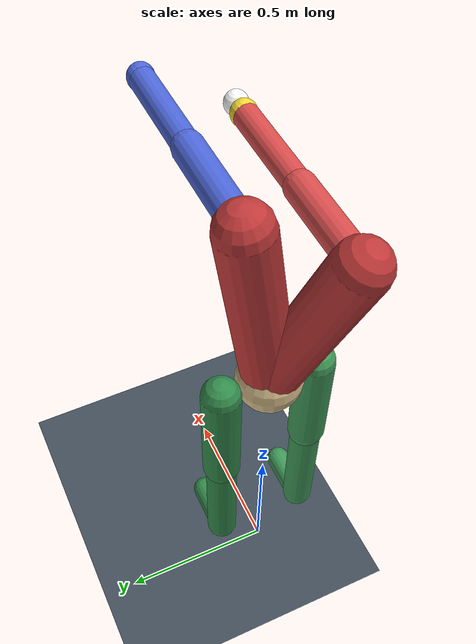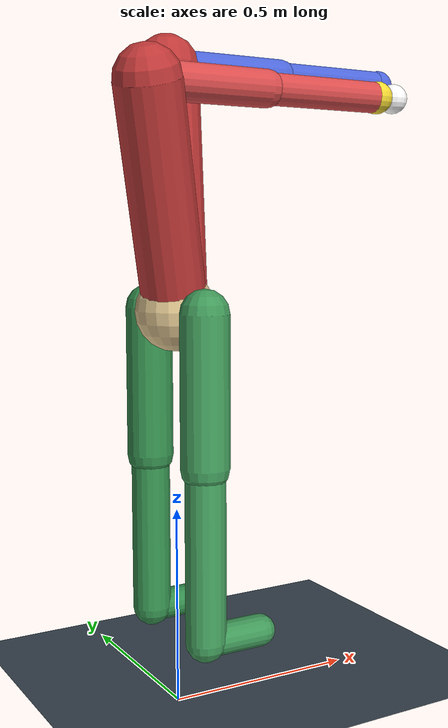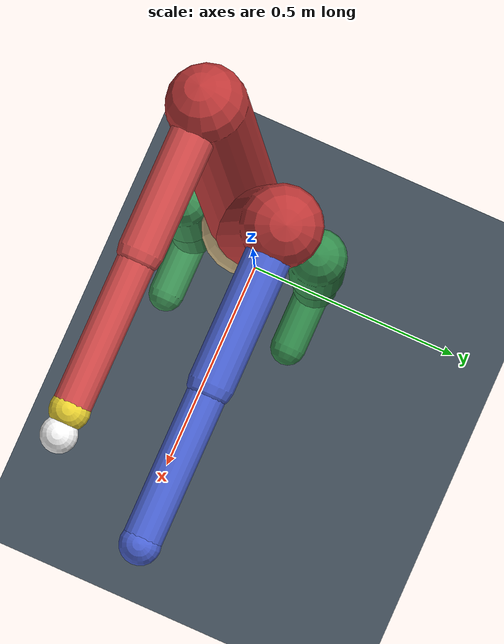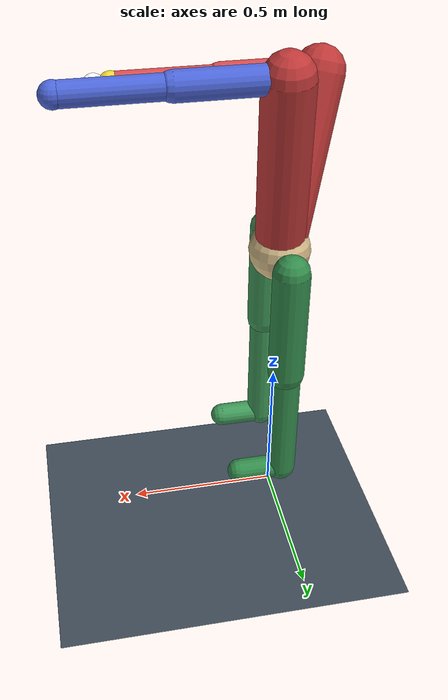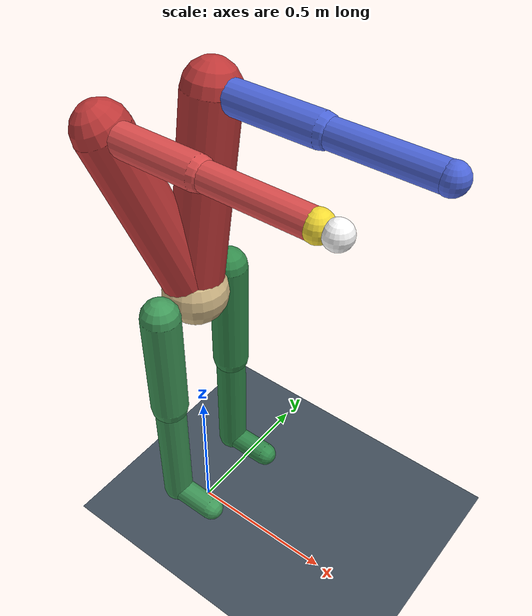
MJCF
<mujoco model="PitcherFullBody">
  <compiler angle="radian"/>
  <option timestep="0.001" gravity="0 0 -9.81" integrator="Euler"/>

  <default>
    <joint type="hinge" damping="5.0" limited="true"/>
    <position kp="80" kv="8"/>
    <geom type="capsule" density="500"/>
    <site size="0.018" rgba="0 0.8 0.8 1"/>
  </default>

  <worldbody>
    <light pos="1 0 3" dir="0 0 -1" directional="true"/>
    <geom name="floor" type="plane" size="5 5 0.1" rgba="0.25 0.3 0.35 1" condim="3"/>

    <!-- Mocap target for pelvis (kinematic root, invisible) -->
    <body name="pelvis_target" mocap="true" pos="0 0 1">
      <geom type="sphere" size="0.001" contype="0" conaffinity="0" rgba="0 0 0 0"/>
    </body>

    <body name="pelvis" pos="0 0 1">
      <freejoint name="root"/>
      <site name="pelvis_site" pos="0 0 0"/>
      <geom name="pelvis_geom" type="sphere" size="0.10" rgba="0.85 0.75 0.55 1"/>

      <!-- ═══════════ TORSO + ARMS ═══════════ -->
      <body name="torso" pos="0 0 0">
        <joint name="trunk_yaw"   axis="0 0 1" range="-3.14 3.14"/>
        <joint name="trunk_pitch" axis="0 1 0" range="-2.5 2.5"/>
        <joint name="trunk_roll"  axis="1 0 0" range="-2.5 2.5"/>
        <geom name="torso_geom" fromto="0 0 0  -0.136730 -0.144815 0.521872" size="0.08" rgba="0.75 0.22 0.22 1"/>
        <geom name="torso_geom2" fromto="0 0 0  0.020841 0.079968 0.589530" size="0.08" rgba="0.75 0.22 0.22 1"/>

        <!-- Throwing arm -->
        <body name="throw_upper_arm" pos="-0.136730 -0.144815 0.521872">
          <site name="throw_shoulder_site" pos="0 0 0"/>
          <joint name="throw_shoulder_yaw"   axis="0 0 1" range="-3.14 3.14"/>
          <joint name="throw_shoulder_pitch" axis="0 1 0" range="-3.14 3.14"/>
          <joint name="throw_shoulder_roll"  axis="1 0 0" range="-3.14 3.14"/>
          <geom name="throw_upper_geom" fromto="0 0 0  0.304182 0 0" size="0.045" rgba="0.85 0.30 0.30 1"/>

          <body name="throw_forearm" pos="0.304182 0 0">
            <site name="throw_elbow_site" pos="0 0 0"/>
            <joint name="throw_elbow_flex" axis="0 1 0" range="-3.14 0.2"/>
            <geom name="throw_fore_geom" fromto="0 0 0  0.323989 0 0" size="0.038" rgba="0.85 0.30 0.30 1"/>

            <body name="throw_hand" pos="0.323989 0 0">
              <site name="throw_hand_site" pos="0 0 0"/>
              <geom name="throw_hand_geom" type="sphere" size="0.04" rgba="0.95 0.85 0.2 1"/>
              <!-- Baseball (visual, attached to hand) -->
              <geom name="ball_geom" type="sphere" size="0.0365" pos="0.05 0 0"
                    rgba="1.0 1.0 1.0 1" mass="0.145" contype="0" conaffinity="0"/>
              <site name="ball_site" pos="0.05 0 0"/>
            </body>
          </body>
        </body>

        <!-- Glove arm -->
        <body name="glove_upper_arm" pos="0.020841 0.079968 0.589530">
          <site name="glove_shoulder_site" pos="0 0 0"/>
          <joint name="glove_shoulder_yaw"   axis="0 0 1" range="-3.14 3.14"/>
          <joint name="glove_shoulder_pitch" axis="0 1 0" range="-3.14 3.14"/>
          <joint name="glove_shoulder_roll"  axis="1 0 0" range="-3.14 3.14"/>
          <geom name="glove_upper_geom" fromto="0 0 0  0.323337 0 0" size="0.045" rgba="0.30 0.40 0.85 1"/>

          <body name="glove_forearm" pos="0.323337 0 0">
            <site name="glove_elbow_site" pos="0 0 0"/>
            <joint name="glove_elbow_flex" axis="0 1 0" range="-3.14 0.2"/>
            <geom name="glove_fore_geom" fromto="0 0 0  0.321395 0 0" size="0.038" rgba="0.30 0.40 0.85 1"/>

            <body name="glove_hand" pos="0.321395 0 0">
              <site name="glove_hand_site" pos="0 0 0"/>
              <geom name="glove_hand_geom" type="sphere" size="0.04" rgba="0.30 0.40 0.85 1"/>
            </body>
          </body>
        </body>
      </body>

      <!-- ═══════════ REAR LEG ═══════════ -->
      <body name="rear_thigh" pos="0.000000 -0.150267 -0.000000">
        <site name="rear_hip_site" pos="0 0 0"/>
        <joint name="rear_hip_yaw"   axis="0 0 1" range="-3.14 3.14"/>
        <joint name="rear_hip_pitch" axis="0 1 0" range="-3.14 3.14"/>
        <joint name="rear_hip_roll"  axis="1 0 0" range="-3.14 3.14"/>
        <geom name="rear_thigh_geom" fromto="0 0 0  0 0 -0.363788" size="0.06" rgba="0.25 0.6 0.35 1"/>

        <body name="rear_shin" pos="0 0 -0.363788">
          <site name="rear_knee_site" pos="0 0 0"/>
          <joint name="rear_knee_flex" axis="0 1 0" range="-0.1 3.14"/>
          <geom name="rear_shin_geom" fromto="0 0 0  0 0 -0.427443" size="0.05" rgba="0.25 0.6 0.35 1"/>

          <body name="rear_foot" pos="0 0 -0.427443">
            <site name="rear_ankle_site" pos="0 0 0"/>
            <joint name="rear_ankle_flex" axis="0 1 0" range="-1.5 1.5"/>
            <geom name="rear_foot_geom" fromto="0 0 0  0.15 0 0" size="0.04" rgba="0.25 0.6 0.35 1"/>
          </body>
        </body>
      </body>

      <!-- ═══════════ LEAD LEG ═══════════ -->
      <body name="lead_thigh" pos="-0.000000 0.150267 -0.000000">
        <site name="lead_hip_site" pos="0 0 0"/>
        <joint name="lead_hip_yaw"   axis="0 0 1" range="-3.14 3.14"/>
        <joint name="lead_hip_pitch" axis="0 1 0" range="-3.14 3.14"/>
        <joint name="lead_hip_roll"  axis="1 0 0" range="-3.14 3.14"/>
        <geom name="lead_thigh_geom" fromto="0 0 0  0 0 -0.383317" size="0.06" rgba="0.20 0.55 0.30 1"/>

        <body name="lead_shin" pos="0 0 -0.383317">
          <site name="lead_knee_site" pos="0 0 0"/>
          <joint name="lead_knee_flex" axis="0 1 0" range="-0.1 3.14"/>
          <geom name="lead_shin_geom" fromto="0 0 0  0 0 -0.412274" size="0.05" rgba="0.20 0.55 0.30 1"/>

          <body name="lead_foot" pos="0 0 -0.412274">
            <site name="lead_ankle_site" pos="0 0 0"/>
            <joint name="lead_ankle_flex" axis="0 1 0" range="-1.5 1.5"/>
            <geom name="lead_foot_geom" fromto="0 0 0  0.15 0 0" size="0.04" rgba="0.20 0.55 0.30 1"/>
          </body>
        </body>
      </body>
    </body>
  </worldbody>

  <actuator>
    <!-- trunk (heavy body, high gains) -->
    <position name="trunk_yaw"   joint="trunk_yaw"   kp="500" kv="50"/>
    <position name="trunk_pitch" joint="trunk_pitch" kp="500" kv="50"/>
    <position name="trunk_roll"  joint="trunk_roll"  kp="500" kv="50"/>
    <!-- throw arm (fast movements, needs stiff tracking) -->
    <position name="throw_shoulder_yaw"   joint="throw_shoulder_yaw"   kp="300" kv="30"/>
    <position name="throw_shoulder_pitch" joint="throw_shoulder_pitch" kp="300" kv="30"/>
    <position name="throw_shoulder_roll"  joint="throw_shoulder_roll"  kp="300" kv="30"/>
    <position name="throw_elbow_flex"     joint="throw_elbow_flex"     kp="300" kv="30"/>
    <!-- glove arm -->
    <position name="glove_shoulder_yaw"   joint="glove_shoulder_yaw"   kp="200" kv="20"/>
    <position name="glove_shoulder_pitch" joint="glove_shoulder_pitch" kp="200" kv="20"/>
    <position name="glove_shoulder_roll"  joint="glove_shoulder_roll"  kp="200" kv="20"/>
    <position name="glove_elbow_flex"     joint="glove_elbow_flex"     kp="200" kv="20"/>
    <!-- rear leg (push-off, high force) -->
    <position name="rear_hip_yaw"    joint="rear_hip_yaw"    kp="400" kv="40"/>
    <position name="rear_hip_pitch"  joint="rear_hip_pitch"  kp="400" kv="40"/>
    <position name="rear_hip_roll"   joint="rear_hip_roll"   kp="400" kv="40"/>
    <position name="rear_knee_flex"  joint="rear_knee_flex"  kp="400" kv="40"/>
    <position name="rear_ankle_flex" joint="rear_ankle_flex" kp="200" kv="20"/>
    <!-- lead leg (landing, high force) -->
    <position name="lead_hip_yaw"    joint="lead_hip_yaw"    kp="400" kv="40"/>
    <position name="lead_hip_pitch"  joint="lead_hip_pitch"  kp="400" kv="40"/>
    <position name="lead_hip_roll"   joint="lead_hip_roll"   kp="400" kv="40"/>
    <position name="lead_knee_flex"  joint="lead_knee_flex"  kp="400" kv="40"/>
    <position name="lead_ankle_flex" joint="lead_ankle_flex" kp="200" kv="20"/>
  </actuator>

  <equality>
    <!-- Weld pelvis to mocap target — very stiff spring for RL root tracking -->
    <weld body1="pelvis_target" body2="pelvis"
          solref="0.01 1" solimp="0.95 0.99 0.001"/>
  </equality>
</mujoco>
